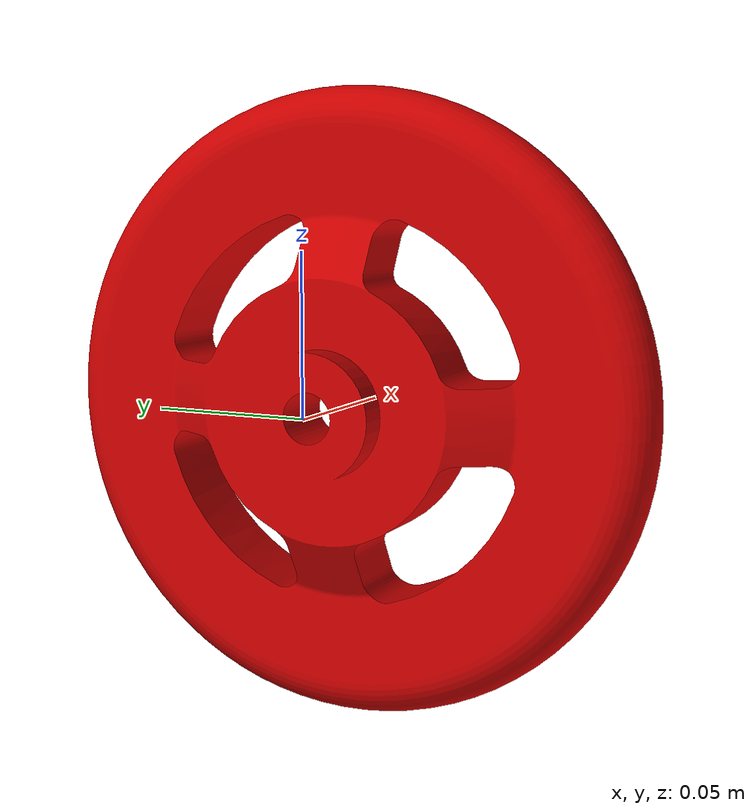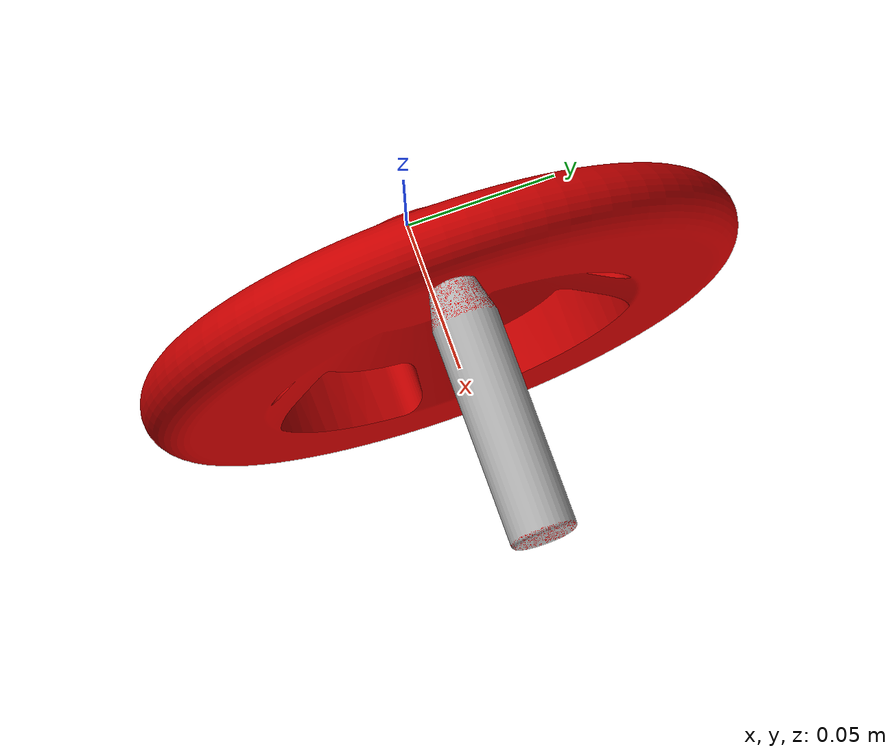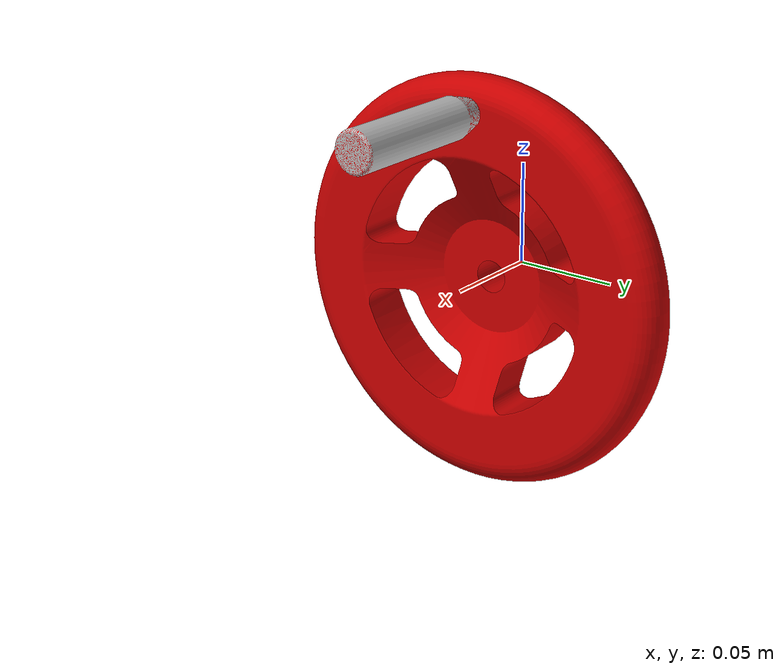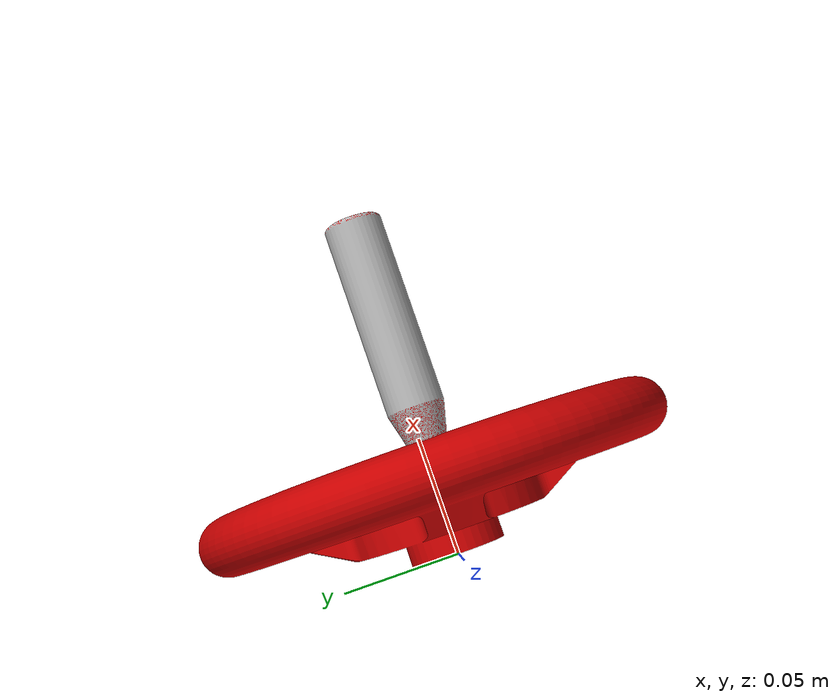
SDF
<?xml version="1.0" ?>
<sdf version="1.5">
  <model name="handle_wheel_valve">
    <link name="handle">
      <inertial>
        <pose>0.03 0 0.01 0 0 0</pose>
        <mass>4.6114</mass>
        <inertia>
          <ixx>0.0252</ixx>
          <ixy>-0.0009</ixy>
          <ixz>0.0000</ixz>
          <iyy>0.0129</iyy>
          <iyz>0.0000</iyz>
          <izz>0.0143</izz>
        </inertia>
      </inertial>
      <collision name="collision">
        <geometry>
          <mesh>
            <uri>model://drc_practice_handle_wheel_valve/meshes/handle_wheel_valve.dae</uri>
          </mesh>
        </geometry>
        <surface>
          <bounce>
            <restitution_coefficient>0.01</restitution_coefficient>
            <threshold>5.0</threshold>
          </bounce>
          <friction>
            <ode>
              <mu>5</mu>
              <mu2>5</mu2>
            </ode>
          </friction>
          <contact>
            <ode>
              <soft_cfm>0.01</soft_cfm>
              <kp>1000000.0</kp>
              <kd>100000.0</kd>
              <max_vel>0.01</max_vel>
              <min_depth>0.001</min_depth>
            </ode>
          </contact>
        </surface>
      </collision>
      <visual name="visual">
        <geometry>
          <mesh>
            <uri>model://drc_practice_handle_wheel_valve/meshes/handle_wheel_valve.dae</uri>
          </mesh>
        </geometry>
      </visual>
    </link>
    <joint name="joint" type="revolute">
      <parent>world</parent>
      <child>handle</child>
      <axis>
        <xyz>1 0 0</xyz>
        <limit>
          <lower>-12.56</lower>
          <upper>12.56</upper>
        </limit>
        <dynamics>
          <!--velocity dependent viscous damping coefficient of the joint-->
          <damping>0</damping>
          <!--default 0, static friction value of the joint-->
          <friction>0</friction>
        </dynamics>
        <use_parent_model_frame>true</use_parent_model_frame>
      </axis>
      <physics>
        <ode>
          <implicit_spring_damper>1</implicit_spring_damper>
        </ode>
      </physics>
    </joint>
  </model>
</sdf>
